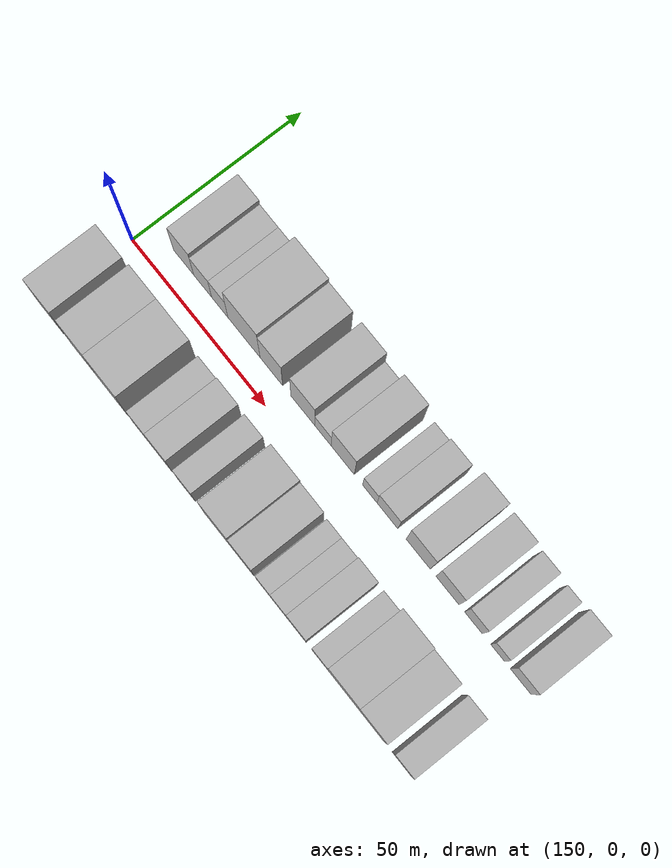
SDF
<sdf version="1.6">
 <world name="default">
  <model name="building_16">
   <static>1</static>
   <pose>161.6808 16.0000 0 0.000000 0.000000 1.570796</pose>
   <link name="link">
    <pose>0 0 9.00 0 0 0</pose>
    <collision name="collision"><geometry><box><size>20.0000 7.7151 18.0000</size></box></geometry></collision>
    <visual name="visual">
     <cast_shadows>0</cast_shadows>
     <geometry><box><size>20.0000 7.7151 18.0000</size></box></geometry>
     <material>
      <script>
       <uri>model://HANNAS_wall/materials/scripts</uri>
       <uri>model://HANNAS_wall/materials/textures</uri>
       <name>vrc/HANNAS_wall</name>
      </script>
     </material>
    </visual>
   </link>
  </model>
  <model name="building_17">
   <static>1</static>
   <pose>168.9210 16.0000 0 0.000000 0.000000 1.570796</pose>
   <link name="link">
    <pose>0 0 7.50 0 0 0</pose>
    <collision name="collision"><geometry><box><size>20.0000 6.7653 15.0000</size></box></geometry></collision>
    <visual name="visual">
     <cast_shadows>0</cast_shadows>
     <geometry><box><size>20.0000 6.7653 15.0000</size></box></geometry>
     <material>
      <script>
       <uri>model://HANNAS_wall/materials/scripts</uri>
       <uri>model://HANNAS_wall/materials/textures</uri>
       <name>vrc/HANNAS_wall</name>
      </script>
     </material>
    </visual>
   </link>
  </model>
  <model name="building_18">
   <static>1</static>
   <pose>175.3522 16.0000 0 0.000000 0.000000 1.570796</pose>
   <link name="link">
    <pose>0 0 7.50 0 0 0</pose>
    <collision name="collision"><geometry><box><size>20.0000 6.0972 15.0000</size></box></geometry></collision>
    <visual name="visual">
     <cast_shadows>0</cast_shadows>
     <geometry><box><size>20.0000 6.0972 15.0000</size></box></geometry>
     <material>
      <script>
       <uri>model://HANNAS_wall/materials/scripts</uri>
       <uri>model://HANNAS_wall/materials/textures</uri>
       <name>vrc/HANNAS_wall</name>
      </script>
     </material>
    </visual>
   </link>
  </model>
  <model name="building_19">
   <static>1</static>
   <pose>184.3921 16.0000 0 0.000000 0.000000 1.570796</pose>
   <link name="link">
    <pose>0 0 12.00 0 0 0</pose>
    <collision name="collision"><geometry><box><size>20.0000 11.9827 24.0000</size></box></geometry></collision>
    <visual name="visual">
     <cast_shadows>0</cast_shadows>
     <geometry><box><size>20.0000 11.9827 24.0000</size></box></geometry>
     <material>
      <script>
       <uri>model://HANNAS_wall/materials/scripts</uri>
       <uri>model://HANNAS_wall/materials/textures</uri>
       <name>vrc/HANNAS_wall</name>
      </script>
     </material>
    </visual>
   </link>
  </model>
  <model name="building_20">
   <static>1</static>
   <pose>194.5859 16.0000 0 0.000000 0.000000 1.570796</pose>
   <link name="link">
    <pose>0 0 10.50 0 0 0</pose>
    <collision name="collision"><geometry><box><size>20.0000 8.4049 21.0000</size></box></geometry></collision>
    <visual name="visual">
     <cast_shadows>0</cast_shadows>
     <geometry><box><size>20.0000 8.4049 21.0000</size></box></geometry>
     <material>
      <script>
       <uri>model://HANNAS_wall/materials/scripts</uri>
       <uri>model://HANNAS_wall/materials/textures</uri>
       <name>vrc/HANNAS_wall</name>
      </script>
     </material>
    </visual>
   </link>
  </model>
  <model name="building_21">
   <static>1</static>
   <pose>206.1869 16.0000 0 0.000000 0.000000 1.570796</pose>
   <link name="link">
    <pose>0 0 10.50 0 0 0</pose>
    <collision name="collision"><geometry><box><size>20.0000 8.7970 21.0000</size></box></geometry></collision>
    <visual name="visual">
     <cast_shadows>0</cast_shadows>
     <geometry><box><size>20.0000 8.7970 21.0000</size></box></geometry>
     <material>
      <script>
       <uri>model://HANNAS_wall/materials/scripts</uri>
       <uri>model://HANNAS_wall/materials/textures</uri>
       <name>vrc/HANNAS_wall</name>
      </script>
     </material>
    </visual>
   </link>
  </model>
  <model name="building_22">
   <static>1</static>
   <pose>213.5829 16.0000 0 0.000000 0.000000 1.570796</pose>
   <link name="link">
    <pose>0 0 6.00 0 0 0</pose>
    <collision name="collision"><geometry><box><size>20.0000 5.9951 12.0000</size></box></geometry></collision>
    <visual name="visual">
     <cast_shadows>0</cast_shadows>
     <geometry><box><size>20.0000 5.9951 12.0000</size></box></geometry>
     <material>
      <script>
       <uri>model://HANNAS_wall/materials/scripts</uri>
       <uri>model://HANNAS_wall/materials/textures</uri>
       <name>vrc/HANNAS_wall</name>
      </script>
     </material>
    </visual>
   </link>
  </model>
  <model name="building_23">
   <static>1</static>
   <pose>220.7910 16.0000 0 0.000000 0.000000 1.570796</pose>
   <link name="link">
    <pose>0 0 10.50 0 0 0</pose>
    <collision name="collision"><geometry><box><size>20.0000 8.4211 21.0000</size></box></geometry></collision>
    <visual name="visual">
     <cast_shadows>0</cast_shadows>
     <geometry><box><size>20.0000 8.4211 21.0000</size></box></geometry>
     <material>
      <script>
       <uri>model://HANNAS_wall/materials/scripts</uri>
       <uri>model://HANNAS_wall/materials/textures</uri>
       <name>vrc/HANNAS_wall</name>
      </script>
     </material>
    </visual>
   </link>
  </model>
  <model name="building_24">
   <static>1</static>
   <pose>230.6266 16.0000 0 0.000000 0.000000 1.570796</pose>
   <link name="link">
    <pose>0 0 6.00 0 0 0</pose>
    <collision name="collision"><geometry><box><size>20.0000 5.2502 12.0000</size></box></geometry></collision>
    <visual name="visual">
     <cast_shadows>0</cast_shadows>
     <geometry><box><size>20.0000 5.2502 12.0000</size></box></geometry>
     <material>
      <script>
       <uri>model://HANNAS_wall/materials/scripts</uri>
       <uri>model://HANNAS_wall/materials/textures</uri>
       <name>vrc/HANNAS_wall</name>
      </script>
     </material>
    </visual>
   </link>
  </model>
  <model name="building_25">
   <static>1</static>
   <pose>236.9846 16.0000 0 0.000000 0.000000 1.570796</pose>
   <link name="link">
    <pose>0 0 7.50 0 0 0</pose>
    <collision name="collision"><geometry><box><size>20.0000 7.4658 15.0000</size></box></geometry></collision>
    <visual name="visual">
     <cast_shadows>0</cast_shadows>
     <geometry><box><size>20.0000 7.4658 15.0000</size></box></geometry>
     <material>
      <script>
       <uri>model://HANNAS_wall/materials/scripts</uri>
       <uri>model://HANNAS_wall/materials/textures</uri>
       <name>vrc/HANNAS_wall</name>
      </script>
     </material>
    </visual>
   </link>
  </model>
  <model name="building_26">
   <static>1</static>
   <pose>248.0401 16.0000 0 0.000000 0.000000 1.570796</pose>
   <link name="link">
    <pose>0 0 10.50 0 0 0</pose>
    <collision name="collision"><geometry><box><size>20.0000 8.6451 21.0000</size></box></geometry></collision>
    <visual name="visual">
     <cast_shadows>0</cast_shadows>
     <geometry><box><size>20.0000 8.6451 21.0000</size></box></geometry>
     <material>
      <script>
       <uri>model://HANNAS_wall/materials/scripts</uri>
       <uri>model://HANNAS_wall/materials/textures</uri>
       <name>vrc/HANNAS_wall</name>
      </script>
     </material>
    </visual>
   </link>
  </model>
  <model name="building_27">
   <static>1</static>
   <pose>258.4381 16.0000 0 0.000000 0.000000 1.570796</pose>
   <link name="link">
    <pose>0 0 9.00 0 0 0</pose>
    <collision name="collision"><geometry><box><size>20.0000 8.1509 18.0000</size></box></geometry></collision>
    <visual name="visual">
     <cast_shadows>0</cast_shadows>
     <geometry><box><size>20.0000 8.1509 18.0000</size></box></geometry>
     <material>
      <script>
       <uri>model://HANNAS_wall/materials/scripts</uri>
       <uri>model://HANNAS_wall/materials/textures</uri>
       <name>vrc/HANNAS_wall</name>
      </script>
     </material>
    </visual>
   </link>
  </model>
  <model name="building_28">
   <static>1</static>
   <pose>267.6070 16.0000 0 0.000000 0.000000 1.570796</pose>
   <link name="link">
    <pose>0 0 7.50 0 0 0</pose>
    <collision name="collision"><geometry><box><size>20.0000 6.1869 15.0000</size></box></geometry></collision>
    <visual name="visual">
     <cast_shadows>0</cast_shadows>
     <geometry><box><size>20.0000 6.1869 15.0000</size></box></geometry>
     <material>
      <script>
       <uri>model://HANNAS_wall/materials/scripts</uri>
       <uri>model://HANNAS_wall/materials/textures</uri>
       <name>vrc/HANNAS_wall</name>
      </script>
     </material>
    </visual>
   </link>
  </model>
  <model name="building_29">
   <static>1</static>
   <pose>276.1133 16.0000 0 0.000000 0.000000 1.570796</pose>
   <link name="link">
    <pose>0 0 6.00 0 0 0</pose>
    <collision name="collision"><geometry><box><size>20.0000 4.8258 12.0000</size></box></geometry></collision>
    <visual name="visual">
     <cast_shadows>0</cast_shadows>
     <geometry><box><size>20.0000 4.8258 12.0000</size></box></geometry>
     <material>
      <script>
       <uri>model://HANNAS_wall/materials/scripts</uri>
       <uri>model://HANNAS_wall/materials/textures</uri>
       <name>vrc/HANNAS_wall</name>
      </script>
     </material>
    </visual>
   </link>
  </model>
  <model name="building_30">
   <static>1</static>
   <pose>284.1362 16.0000 0 0.000000 0.000000 1.570796</pose>
   <link name="link">
    <pose>0 0 7.50 0 0 0</pose>
    <collision name="collision"><geometry><box><size>20.0000 7.2200 15.0000</size></box></geometry></collision>
    <visual name="visual">
     <cast_shadows>0</cast_shadows>
     <geometry><box><size>20.0000 7.2200 15.0000</size></box></geometry>
     <material>
      <script>
       <uri>model://HANNAS_wall/materials/scripts</uri>
       <uri>model://HANNAS_wall/materials/textures</uri>
       <name>vrc/HANNAS_wall</name>
      </script>
     </material>
    </visual>
   </link>
  </model>
  <model name="building_44">
   <static>1</static>
   <pose>153.0880 -16.0000 0 0.000000 0.000000 1.570796</pose>
   <link name="link">
    <pose>0 0 10.50 0 0 0</pose>
    <collision name="collision"><geometry><box><size>20.0000 9.6135 21.0000</size></box></geometry></collision>
    <visual name="visual">
     <cast_shadows>0</cast_shadows>
     <geometry><box><size>20.0000 9.6135 21.0000</size></box></geometry>
     <material>
      <script>
       <uri>model://HANNAS_wall/materials/scripts</uri>
       <uri>model://HANNAS_wall/materials/textures</uri>
       <name>vrc/HANNAS_wall</name>
      </script>
     </material>
    </visual>
   </link>
  </model>
  <model name="building_45">
   <static>1</static>
   <pose>165.7497 -16.0000 0 0.000000 0.000000 1.570796</pose>
   <link name="link">
    <pose>0 0 12.00 0 0 0</pose>
    <collision name="collision"><geometry><box><size>20.0000 9.7098 24.0000</size></box></geometry></collision>
    <visual name="visual">
     <cast_shadows>0</cast_shadows>
     <geometry><box><size>20.0000 9.7098 24.0000</size></box></geometry>
     <material>
      <script>
       <uri>model://HANNAS_wall/materials/scripts</uri>
       <uri>model://HANNAS_wall/materials/textures</uri>
       <name>vrc/HANNAS_wall</name>
      </script>
     </material>
    </visual>
   </link>
  </model>
  <model name="building_46">
   <static>1</static>
   <pose>176.4612 -16.0000 0 0.000000 0.000000 1.570796</pose>
   <link name="link">
    <pose>0 0 12.00 0 0 0</pose>
    <collision name="collision"><geometry><box><size>20.0000 11.7132 24.0000</size></box></geometry></collision>
    <visual name="visual">
     <cast_shadows>0</cast_shadows>
     <geometry><box><size>20.0000 11.7132 24.0000</size></box></geometry>
     <material>
      <script>
       <uri>model://HANNAS_wall/materials/scripts</uri>
       <uri>model://HANNAS_wall/materials/textures</uri>
       <name>vrc/HANNAS_wall</name>
      </script>
     </material>
    </visual>
   </link>
  </model>
  <model name="building_47">
   <static>1</static>
   <pose>187.8046 -16.0000 0 0.000000 0.000000 1.570796</pose>
   <link name="link">
    <pose>0 0 7.50 0 0 0</pose>
    <collision name="collision"><geometry><box><size>20.0000 6.9735 15.0000</size></box></geometry></collision>
    <visual name="visual">
     <cast_shadows>0</cast_shadows>
     <geometry><box><size>20.0000 6.9735 15.0000</size></box></geometry>
     <material>
      <script>
       <uri>model://HANNAS_wall/materials/scripts</uri>
       <uri>model://HANNAS_wall/materials/textures</uri>
       <name>vrc/HANNAS_wall</name>
      </script>
     </material>
    </visual>
   </link>
  </model>
  <model name="building_48">
   <static>1</static>
   <pose>195.1028 -16.0000 0 0.000000 0.000000 1.570796</pose>
   <link name="link">
    <pose>0 0 9.00 0 0 0</pose>
    <collision name="collision"><geometry><box><size>20.0000 7.6230 18.0000</size></box></geometry></collision>
    <visual name="visual">
     <cast_shadows>0</cast_shadows>
     <geometry><box><size>20.0000 7.6230 18.0000</size></box></geometry>
     <material>
      <script>
       <uri>model://HANNAS_wall/materials/scripts</uri>
       <uri>model://HANNAS_wall/materials/textures</uri>
       <name>vrc/HANNAS_wall</name>
      </script>
     </material>
    </visual>
   </link>
  </model>
  <model name="building_49">
   <static>1</static>
   <pose>204.2208 -16.0000 0 0.000000 0.000000 1.570796</pose>
   <link name="link">
    <pose>0 0 7.50 0 0 0</pose>
    <collision name="collision"><geometry><box><size>20.0000 6.6130 15.0000</size></box></geometry></collision>
    <visual name="visual">
     <cast_shadows>0</cast_shadows>
     <geometry><box><size>20.0000 6.6130 15.0000</size></box></geometry>
     <material>
      <script>
       <uri>model://HANNAS_wall/materials/scripts</uri>
       <uri>model://HANNAS_wall/materials/textures</uri>
       <name>vrc/HANNAS_wall</name>
      </script>
     </material>
    </visual>
   </link>
  </model>
  <model name="building_50">
   <static>1</static>
   <pose>215.5795 -16.0000 0 0.000000 0.000000 1.570796</pose>
   <link name="link">
    <pose>0 0 10.50 0 0 0</pose>
    <collision name="collision"><geometry><box><size>20.0000 10.1043 21.0000</size></box></geometry></collision>
    <visual name="visual">
     <cast_shadows>0</cast_shadows>
     <geometry><box><size>20.0000 10.1043 21.0000</size></box></geometry>
     <material>
      <script>
       <uri>model://HANNAS_wall/materials/scripts</uri>
       <uri>model://HANNAS_wall/materials/textures</uri>
       <name>vrc/HANNAS_wall</name>
      </script>
     </material>
    </visual>
   </link>
  </model>
  <model name="building_51">
   <static>1</static>
   <pose>224.7859 -16.0000 0 0.000000 0.000000 1.570796</pose>
   <link name="link">
    <pose>0 0 9.00 0 0 0</pose>
    <collision name="collision"><geometry><box><size>20.0000 8.3085 18.0000</size></box></geometry></collision>
    <visual name="visual">
     <cast_shadows>0</cast_shadows>
     <geometry><box><size>20.0000 8.3085 18.0000</size></box></geometry>
     <material>
      <script>
       <uri>model://HANNAS_wall/materials/scripts</uri>
       <uri>model://HANNAS_wall/materials/textures</uri>
       <name>vrc/HANNAS_wall</name>
      </script>
     </material>
    </visual>
   </link>
  </model>
  <model name="building_52">
   <static>1</static>
   <pose>232.5579 -16.0000 0 0.000000 0.000000 1.570796</pose>
   <link name="link">
    <pose>0 0 6.00 0 0 0</pose>
    <collision name="collision"><geometry><box><size>20.0000 5.2355 12.0000</size></box></geometry></collision>
    <visual name="visual">
     <cast_shadows>0</cast_shadows>
     <geometry><box><size>20.0000 5.2355 12.0000</size></box></geometry>
     <material>
      <script>
       <uri>model://HANNAS_wall/materials/scripts</uri>
       <uri>model://HANNAS_wall/materials/textures</uri>
       <name>vrc/HANNAS_wall</name>
      </script>
     </material>
    </visual>
   </link>
  </model>
  <model name="building_53">
   <static>1</static>
   <pose>238.0407 -16.0000 0 0.000000 0.000000 1.570796</pose>
   <link name="link">
    <pose>0 0 6.00 0 0 0</pose>
    <collision name="collision"><geometry><box><size>20.0000 5.7300 12.0000</size></box></geometry></collision>
    <visual name="visual">
     <cast_shadows>0</cast_shadows>
     <geometry><box><size>20.0000 5.7300 12.0000</size></box></geometry>
     <material>
      <script>
       <uri>model://HANNAS_wall/materials/scripts</uri>
       <uri>model://HANNAS_wall/materials/textures</uri>
       <name>vrc/HANNAS_wall</name>
      </script>
     </material>
    </visual>
   </link>
  </model>
  <model name="building_54">
   <static>1</static>
   <pose>244.3657 -16.0000 0 0.000000 0.000000 1.570796</pose>
   <link name="link">
    <pose>0 0 7.50 0 0 0</pose>
    <collision name="collision"><geometry><box><size>20.0000 6.9201 15.0000</size></box></geometry></collision>
    <visual name="visual">
     <cast_shadows>0</cast_shadows>
     <geometry><box><size>20.0000 6.9201 15.0000</size></box></geometry>
     <material>
      <script>
       <uri>model://HANNAS_wall/materials/scripts</uri>
       <uri>model://HANNAS_wall/materials/textures</uri>
       <name>vrc/HANNAS_wall</name>
      </script>
     </material>
    </visual>
   </link>
  </model>
  <model name="building_55">
   <static>1</static>
   <pose>252.6125 -16.0000 0 0.000000 0.000000 1.570796</pose>
   <link name="link">
    <pose>0 0 6.00 0 0 0</pose>
    <collision name="collision"><geometry><box><size>20.0000 5.5735 12.0000</size></box></geometry></collision>
    <visual name="visual">
     <cast_shadows>0</cast_shadows>
     <geometry><box><size>20.0000 5.5735 12.0000</size></box></geometry>
     <material>
      <script>
       <uri>model://HANNAS_wall/materials/scripts</uri>
       <uri>model://HANNAS_wall/materials/textures</uri>
       <name>vrc/HANNAS_wall</name>
      </script>
     </material>
    </visual>
   </link>
  </model>
  <model name="building_56">
   <static>1</static>
   <pose>260.7164 -16.0000 0 0.000000 0.000000 1.570796</pose>
   <link name="link">
    <pose>0 0 12.00 0 0 0</pose>
    <collision name="collision"><geometry><box><size>20.0000 10.6343 24.0000</size></box></geometry></collision>
    <visual name="visual">
     <cast_shadows>0</cast_shadows>
     <geometry><box><size>20.0000 10.6343 24.0000</size></box></geometry>
     <material>
      <script>
       <uri>model://HANNAS_wall/materials/scripts</uri>
       <uri>model://HANNAS_wall/materials/textures</uri>
       <name>vrc/HANNAS_wall</name>
      </script>
     </material>
    </visual>
   </link>
  </model>
  <model name="building_57">
   <static>1</static>
   <pose>270.6833 -16.0000 0 0.000000 0.000000 1.570796</pose>
   <link name="link">
    <pose>0 0 10.50 0 0 0</pose>
    <collision name="collision"><geometry><box><size>20.0000 9.2994 21.0000</size></box></geometry></collision>
    <visual name="visual">
     <cast_shadows>0</cast_shadows>
     <geometry><box><size>20.0000 9.2994 21.0000</size></box></geometry>
     <material>
      <script>
       <uri>model://HANNAS_wall/materials/scripts</uri>
       <uri>model://HANNAS_wall/materials/textures</uri>
       <name>vrc/HANNAS_wall</name>
      </script>
     </material>
    </visual>
   </link>
  </model>
  <model name="building_58">
   <static>1</static>
   <pose>281.5700 -16.0000 0 0.000000 0.000000 1.570796</pose>
   <link name="link">
    <pose>0 0 7.50 0 0 0</pose>
    <collision name="collision"><geometry><box><size>20.0000 6.4740 15.0000</size></box></geometry></collision>
    <visual name="visual">
     <cast_shadows>0</cast_shadows>
     <geometry><box><size>20.0000 6.4740 15.0000</size></box></geometry>
     <material>
      <script>
       <uri>model://HANNAS_wall/materials/scripts</uri>
       <uri>model://HANNAS_wall/materials/textures</uri>
       <name>vrc/HANNAS_wall</name>
      </script>
     </material>
    </visual>
   </link>
  </model>
 </world>
</sdf>
